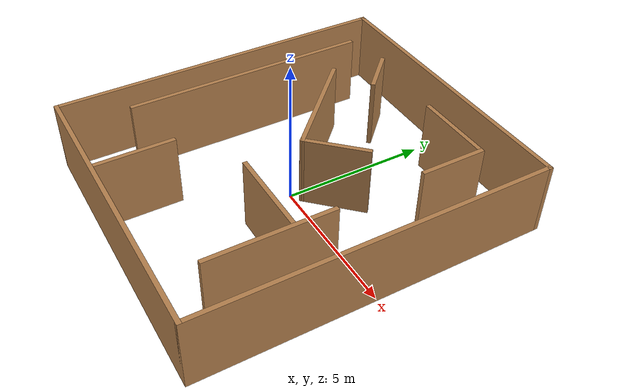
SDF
<?xml version='1.0'?>
<sdf version='1.7'>
  <model name='env01'>
    <pose>-0.017814 0.043684 0 0 -0 0</pose>
    <link name='Wall_0'>
      <collision name='Wall_0_Collision'>
        <geometry>
          <box>
            <size>12 0.15 2.5</size>
          </box>
        </geometry>
        <pose>0 0 1.25 0 -0 0</pose>
      </collision>
      <visual name='Wall_0_Visual'>
        <pose>0 0 1.25 0 -0 0</pose>
        <geometry>
          <box>
            <size>12 0.15 2.5</size>
          </box>
        </geometry>
        <material>
          <script>
            <uri>file://media/materials/scripts/gazebo.material</uri>
            <name>Gazebo/Wood</name>
          </script>
          <ambient>1 1 1 1</ambient>
        </material>
        <meta>
          <layer>0</layer>
        </meta>
      </visual>
      <pose>-5.05 -0 0 0 -0 1.5708</pose>
    </link>
    <link name='Wall_17'>
      <collision name='Wall_17_Collision'>
        <geometry>
          <box>
            <size>1.75 0.15 2.5</size>
          </box>
        </geometry>
        <pose>0 0 1.25 0 -0 0</pose>
      </collision>
      <visual name='Wall_17_Visual'>
        <pose>0 0 1.25 0 -0 0</pose>
        <geometry>
          <box>
            <size>1.75 0.15 2.5</size>
          </box>
        </geometry>
        <material>
          <script>
            <uri>file://media/materials/scripts/gazebo.material</uri>
            <name>Gazebo/Wood</name>
          </script>
          <ambient>1 1 1 1</ambient>
        </material>
        <meta>
          <layer>0</layer>
        </meta>
      </visual>
      <pose>-1.72956 4.38227 0 0 -0 2.35619</pose>
    </link>
    <link name='Wall_19'>
      <collision name='Wall_19_Collision'>
        <geometry>
          <box>
            <size>2.75 0.15 2.5</size>
          </box>
        </geometry>
        <pose>0 0 1.25 0 -0 0</pose>
      </collision>
      <visual name='Wall_19_Visual'>
        <pose>0 0 1.25 0 -0 0</pose>
        <geometry>
          <box>
            <size>2.75 0.15 2.5</size>
          </box>
        </geometry>
        <material>
          <script>
            <uri>file://media/materials/scripts/gazebo.material</uri>
            <name>Gazebo/Wood</name>
          </script>
          <ambient>1 1 1 1</ambient>
        </material>
        <meta>
          <layer>0</layer>
        </meta>
      </visual>
      <pose>2.13114 4.66779 0 0 -0 0</pose>
    </link>
    <link name='Wall_20'>
      <collision name='Wall_20_Collision'>
        <geometry>
          <box>
            <size>2.25 0.15 2.5</size>
          </box>
        </geometry>
        <pose>0 0 1.25 0 -0 0</pose>
      </collision>
      <visual name='Wall_20_Visual'>
        <pose>0 0 1.25 0 -0 0</pose>
        <geometry>
          <box>
            <size>2.25 0.15 2.5</size>
          </box>
        </geometry>
        <material>
          <script>
            <uri>file://media/materials/scripts/gazebo.material</uri>
            <name>Gazebo/Wood</name>
          </script>
          <ambient>1 1 1 1</ambient>
        </material>
        <meta>
          <layer>0</layer>
        </meta>
      </visual>
      <pose>3.43114 3.61779 0 0 -0 -1.5708</pose>
    </link>
    <link name='Wall_23'>
      <collision name='Wall_23_Collision'>
        <geometry>
          <box>
            <size>4.25 0.15 2.5</size>
          </box>
        </geometry>
        <pose>0 0 1.25 0 -0 0</pose>
      </collision>
      <visual name='Wall_23_Visual'>
        <pose>0 0 1.25 0 -0 0</pose>
        <geometry>
          <box>
            <size>4.25 0.15 2.5</size>
          </box>
        </geometry>
        <material>
          <script>
            <uri>file://media/materials/scripts/gazebo.material</uri>
            <name>Gazebo/Wood</name>
          </script>
          <ambient>1 1 1 1</ambient>
        </material>
        <meta>
          <layer>0</layer>
        </meta>
      </visual>
      <pose>-1.1089 1.64899 0 0 -0 -0.785398</pose>
    </link>
    <link name='Wall_24'>
      <collision name='Wall_24_Collision'>
        <geometry>
          <box>
            <size>2.2637 0.15 2.5</size>
          </box>
        </geometry>
        <pose>0 0 1.25 0 -0 0</pose>
      </collision>
      <visual name='Wall_24_Visual'>
        <pose>0 0 1.25 0 -0 0</pose>
        <geometry>
          <box>
            <size>2.2637 0.15 2.5</size>
          </box>
        </geometry>
        <material>
          <script>
            <uri>file://media/materials/scripts/gazebo.material</uri>
            <name>Gazebo/Wood</name>
          </script>
          <ambient>1 1 1 1</ambient>
        </material>
        <meta>
          <layer>0</layer>
        </meta>
      </visual>
      <pose>1.07552 0.958968 0 0 -0 0.801918</pose>
    </link>
    <link name='Wall_29'>
      <collision name='Wall_29_Collision'>
        <geometry>
          <box>
            <size>4.25 0.15 2.5</size>
          </box>
        </geometry>
        <pose>0 0 1.25 0 -0 0</pose>
      </collision>
      <visual name='Wall_29_Visual'>
        <pose>0 0 1.25 0 -0 0</pose>
        <geometry>
          <box>
            <size>4.25 0.15 2.5</size>
          </box>
        </geometry>
        <material>
          <script>
            <uri>file://media/materials/scripts/gazebo.material</uri>
            <name>Gazebo/Wood</name>
          </script>
          <ambient>1 1 1 1</ambient>
        </material>
        <meta>
          <layer>0</layer>
        </meta>
      </visual>
      <pose>3.49116 -2.56925 0 0 -0 -1.5708</pose>
    </link>
    <link name='Wall_3'>
      <collision name='Wall_3_Collision'>
        <geometry>
          <box>
            <size>10.25 0.15 2.5</size>
          </box>
        </geometry>
        <pose>0 0 1.25 0 -0 0</pose>
      </collision>
      <visual name='Wall_3_Visual'>
        <pose>0 0 1.25 0 -0 0</pose>
        <geometry>
          <box>
            <size>10.25 0.15 2.5</size>
          </box>
        </geometry>
        <material>
          <script>
            <uri>file://media/materials/scripts/gazebo.material</uri>
            <name>Gazebo/Wood</name>
          </script>
          <ambient>1 1 1 1</ambient>
        </material>
        <meta>
          <layer>0</layer>
        </meta>
      </visual>
      <pose>-0 -5.925 0 0 -0 0</pose>
    </link>
    <link name='Wall_37'>
      <collision name='Wall_37_Collision'>
        <geometry>
          <box>
            <size>3 0.15 2.5</size>
          </box>
        </geometry>
        <pose>0 0 1.25 0 -0 0</pose>
      </collision>
      <visual name='Wall_37_Visual'>
        <pose>0 0 1.25 0 -0 0</pose>
        <geometry>
          <box>
            <size>3 0.15 2.5</size>
          </box>
        </geometry>
        <material>
          <script>
            <uri>file://media/materials/scripts/gazebo.material</uri>
            <name>Gazebo/Wood</name>
          </script>
          <ambient>1 1 1 1</ambient>
        </material>
        <meta>
          <layer>0</layer>
        </meta>
      </visual>
      <pose>1.93931 -1.84217 0 0 -0 0</pose>
    </link>
    <link name='Wall_39'>
      <collision name='Wall_39_Collision'>
        <geometry>
          <box>
            <size>2.75 0.15 2.5</size>
          </box>
        </geometry>
        <pose>0 0 1.25 0 -0 0</pose>
      </collision>
      <visual name='Wall_39_Visual'>
        <pose>0 0 1.25 0 -0 0</pose>
        <geometry>
          <box>
            <size>2.75 0.15 2.5</size>
          </box>
        </geometry>
        <material>
          <script>
            <uri>file://media/materials/scripts/gazebo.material</uri>
            <name>Gazebo/Wood</name>
          </script>
          <ambient>1 1 1 1</ambient>
        </material>
        <meta>
          <layer>0</layer>
        </meta>
      </visual>
      <pose>-1.6074 -4.5784 0 0 -0 1.5708</pose>
    </link>
    <link name='Wall_5'>
      <collision name='Wall_5_Collision'>
        <geometry>
          <box>
            <size>12 0.15 2.5</size>
          </box>
        </geometry>
        <pose>0 0 1.25 0 -0 0</pose>
      </collision>
      <visual name='Wall_5_Visual'>
        <pose>0 0 1.25 0 -0 0</pose>
        <geometry>
          <box>
            <size>12 0.15 2.5</size>
          </box>
        </geometry>
        <material>
          <script>
            <uri>file://media/materials/scripts/gazebo.material</uri>
            <name>Gazebo/Wood</name>
          </script>
          <ambient>1 1 1 1</ambient>
        </material>
        <meta>
          <layer>0</layer>
        </meta>
      </visual>
      <pose>5.05 -0 0 0 -0 1.5708</pose>
    </link>
    <link name='Wall_6'>
      <collision name='Wall_6_Collision'>
        <geometry>
          <box>
            <size>10.25 0.15 2.5</size>
          </box>
        </geometry>
        <pose>0 0 1.25 0 -0 0</pose>
      </collision>
      <visual name='Wall_6_Visual'>
        <pose>0 0 1.25 0 -0 0</pose>
        <geometry>
          <box>
            <size>10.25 0.15 2.5</size>
          </box>
        </geometry>
        <material>
          <script>
            <uri>file://media/materials/scripts/gazebo.material</uri>
            <name>Gazebo/Wood</name>
          </script>
          <ambient>1 1 1 1</ambient>
        </material>
        <meta>
          <layer>0</layer>
        </meta>
      </visual>
      <pose>-0 5.925 0 0 -0 3.14159</pose>
    </link>
    <link name='Wall_8'>
      <collision name='Wall_8_Collision'>
        <geometry>
          <box>
            <size>8.5 0.15 2.5</size>
          </box>
        </geometry>
        <pose>0 0 1.25 0 -0 0</pose>
      </collision>
      <visual name='Wall_8_Visual'>
        <pose>0 0 1.25 0 -0 0</pose>
        <geometry>
          <box>
            <size>8.5 0.15 2.5</size>
          </box>
        </geometry>
        <material>
          <script>
            <uri>file://media/materials/scripts/gazebo.material</uri>
            <name>Gazebo/Wood</name>
          </script>
          <ambient>1 1 1 1</ambient>
        </material>
        <meta>
          <layer>0</layer>
        </meta>
      </visual>
      <pose>-3.85049 0.412989 0 0 -0 -1.5708</pose>
    </link>
    <static>1</static>
  </model>
</sdf>
